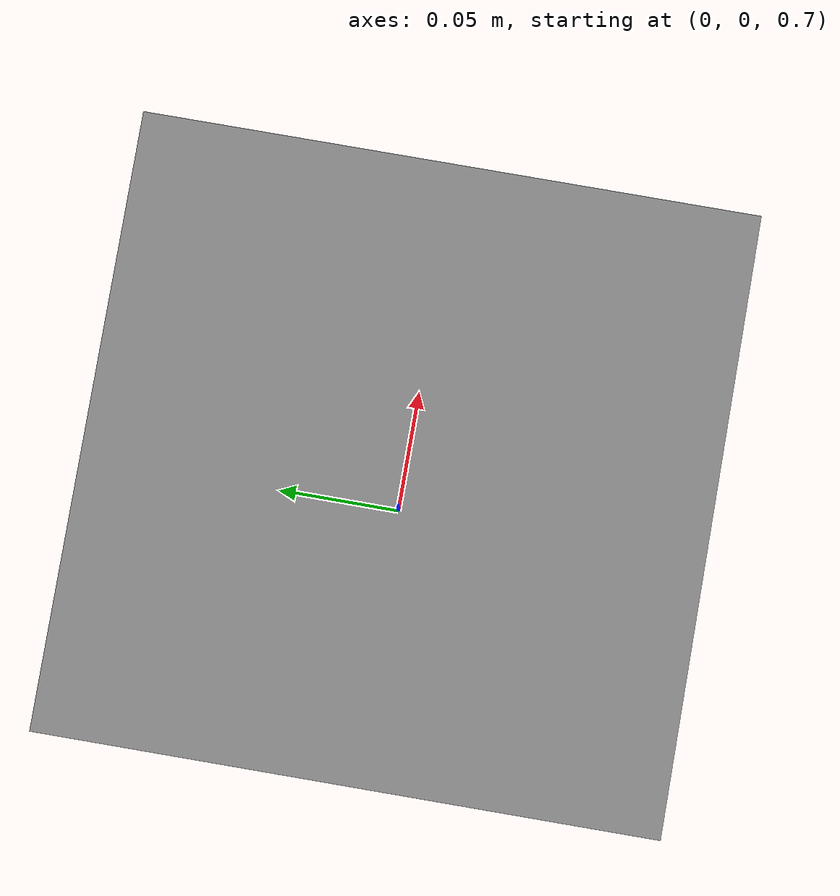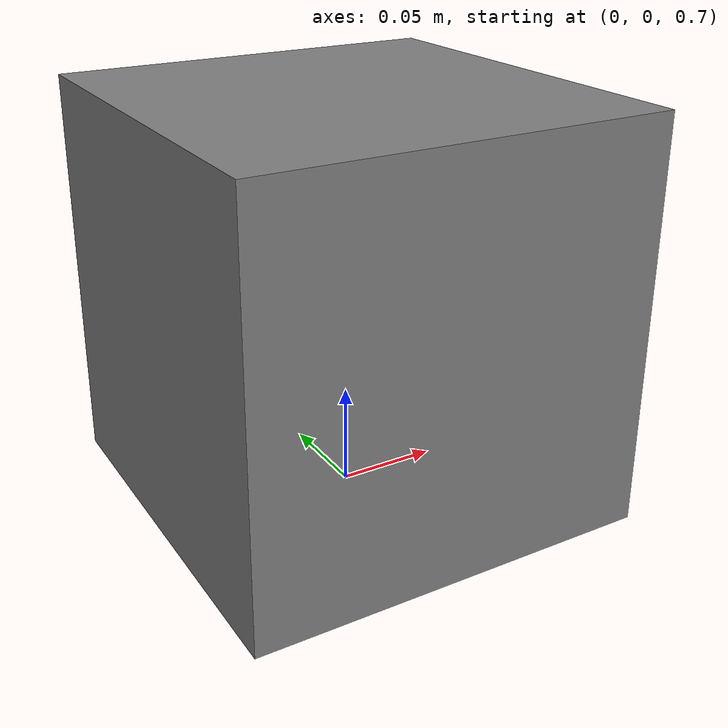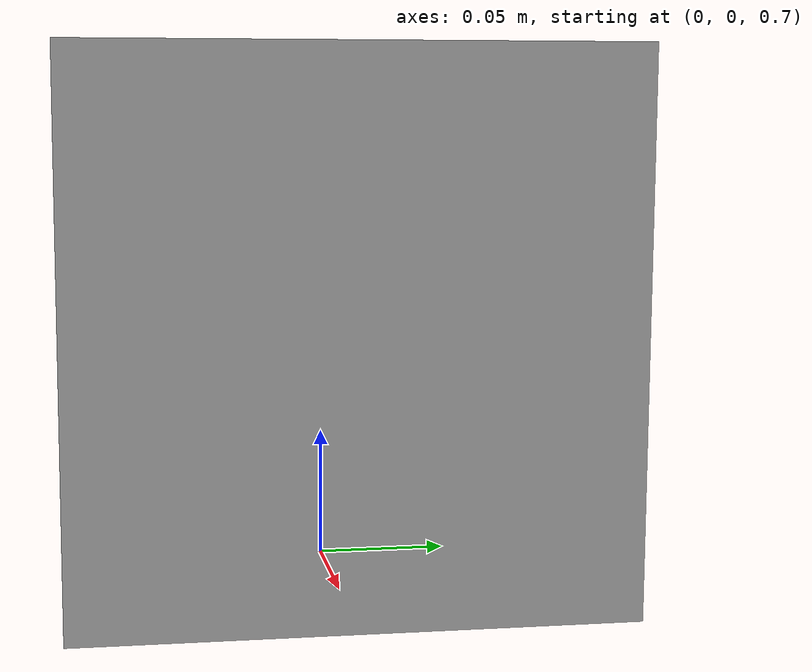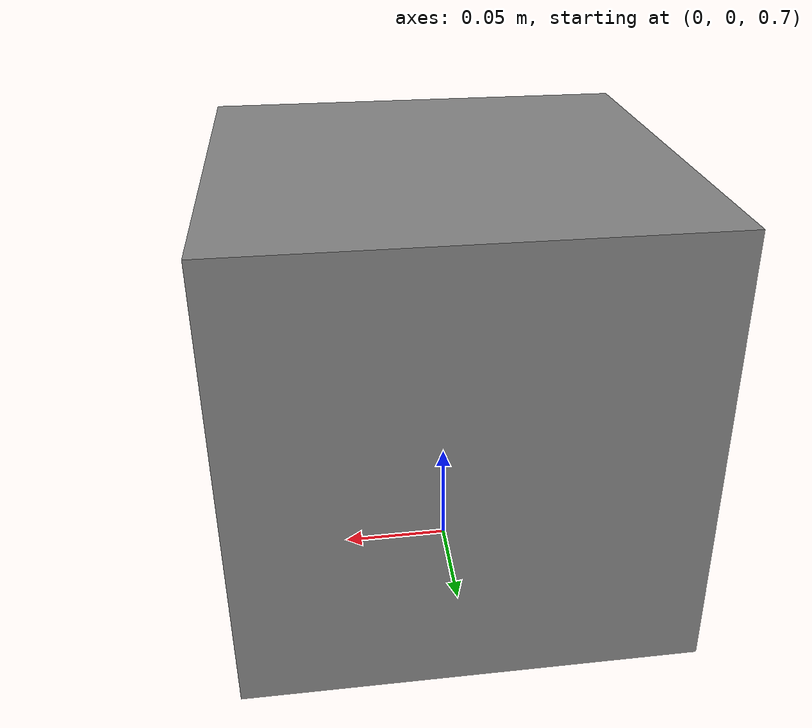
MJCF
<mujoco>
    <worldbody>
        <geom type="plane" size="1 1 0.1"/>

        <body name="penulum" pos="0 0 1">
            <joint name="hinge" type="hinge" axis="0 1 0"/>
            <inertial mass="1" pos="0 0 -0.2" diaginertia="0.01 0.01 0.01"/>
            <geom type="box" size="0.1 0.1 0.1" pos="0 0 -0.2"/>
        </body>
    </worldbody>

    <actuator>
        <motor joint="hinge" gear="1" ctrlrange="-1 1"/>
    </actuator>

    <sensor>
        <jointpos joint="hinge"/>
        <jointvel joint="hinge"/>
    </sensor>
</mujoco>
